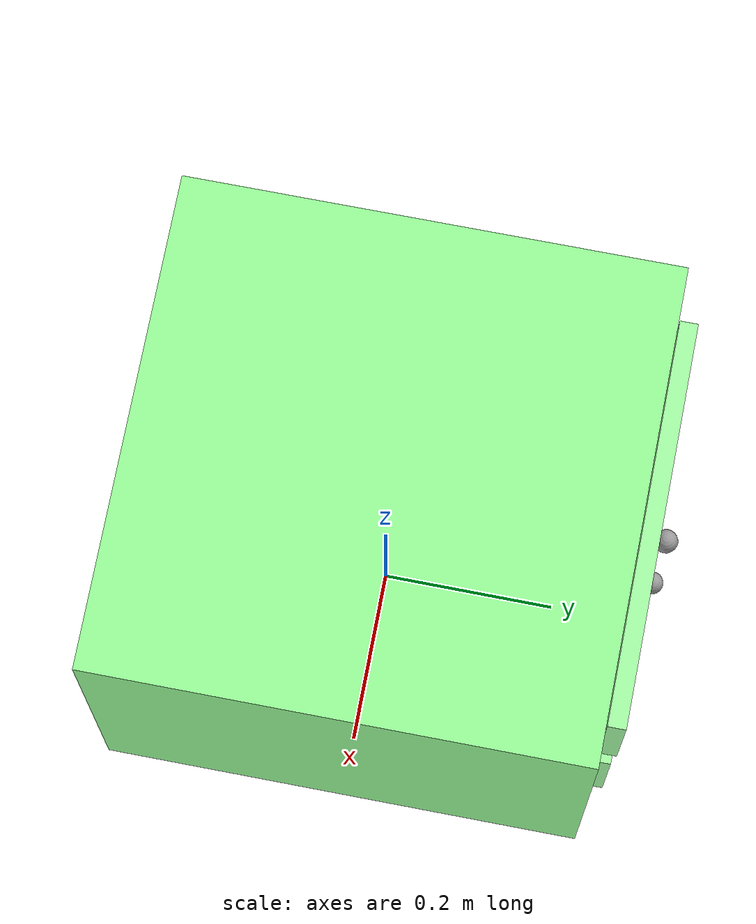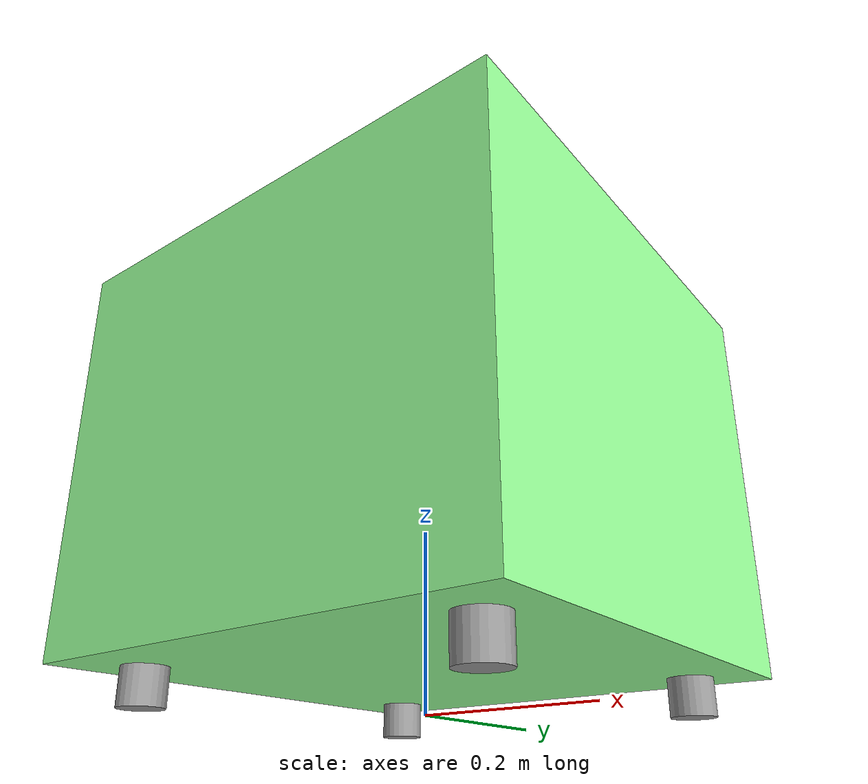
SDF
<?xml version='1.0'?>
<sdf version='1.7'>
  <model name='my_drawer'>
    <link name='link'>
      <inertial>
        <mass>1</mass>
        <inertia>
          <ixx>0.166667</ixx>
          <ixy>0</ixy>
          <ixz>0</ixz>
          <iyy>0.166667</iyy>
          <iyz>0</iyz>
          <izz>0.166667</izz>
        </inertia>
        <pose>0 0 0 0 -0 0</pose>
      </inertial>
      <self_collide>0</self_collide>
      <enable_wind>0</enable_wind>
      <kinematic>0</kinematic>
      <pose>0 0 0 0 -0 0</pose>
      <gravity>1</gravity>
      <visual name='visual'>
        <geometry>
          <box>
            <size>0.55 0.55 0.45</size>
          </box>
        </geometry>
        <material>
          <script>
            <name>Gazebo/Grey</name>
            <uri>file://media/materials/scripts/gazebo.material</uri>
          </script>
          <shader type='pixel'>
            <normal_map>__default__</normal_map>
          </shader>
          <ambient>0.6 1 0.6 1</ambient>
          <diffuse>0.6 1 0.6 1</diffuse>
          <specular>0.01 0.01 0.01 1</specular>
          <emissive>0 0 0 1</emissive>
        </material>
        <pose>0 0 0.27 0 -0 0</pose>
        <transparency>0</transparency>
        <cast_shadows>1</cast_shadows>
      </visual>
      <collision name='collision'>
        <laser_retro>0</laser_retro>
        <max_contacts>10</max_contacts>
        <pose>0 0 0.27 0 -0 0</pose>
        <geometry>
          <box>
            <size>0.55 0.55 0.45</size>
          </box>
        </geometry>
        <surface>
          <friction>
            <ode>
              <mu>1</mu>
              <mu2>1</mu2>
              <fdir1>0 0 0</fdir1>
              <slip1>0</slip1>
              <slip2>0</slip2>
            </ode>
            <torsional>
              <coefficient>1</coefficient>
              <patch_radius>0</patch_radius>
              <surface_radius>0</surface_radius>
              <use_patch_radius>1</use_patch_radius>
              <ode>
                <slip>0</slip>
              </ode>
            </torsional>
          </friction>
          <bounce>
            <restitution_coefficient>0</restitution_coefficient>
            <threshold>1e+06</threshold>
          </bounce>
          <contact>
            <collide_without_contact>0</collide_without_contact>
            <collide_without_contact_bitmask>1</collide_without_contact_bitmask>
            <collide_bitmask>1</collide_bitmask>
            <ode>
              <soft_cfm>0</soft_cfm>
              <soft_erp>0.2</soft_erp>
              <kp>1e+13</kp>
              <kd>1</kd>
              <max_vel>0.01</max_vel>
              <min_depth>0</min_depth>
            </ode>
            <bullet>
              <split_impulse>1</split_impulse>
              <split_impulse_penetration_threshold>-0.01</split_impulse_penetration_threshold>
              <soft_cfm>0</soft_cfm>
              <soft_erp>0.2</soft_erp>
              <kp>1e+13</kp>
              <kd>1</kd>
            </bullet>
          </contact>
        </surface>
      </collision>
    </link>
    <link name='link_0'>
      <inertial>
        <mass>1</mass>
        <inertia>
          <ixx>0.145833</ixx>
          <ixy>0</ixy>
          <ixz>0</ixz>
          <iyy>0.145833</iyy>
          <iyz>0</iyz>
          <izz>0.125</izz>
        </inertia>
        <pose>0 0 0 0 -0 0</pose>
      </inertial>
      <pose>0.2095 -0.203821 0.302524 0 -0 0</pose>
      <gravity>1</gravity>
      <self_collide>0</self_collide>
      <kinematic>0</kinematic>
      <enable_wind>0</enable_wind>
      <visual name='visual'>
        <pose>0 0 -0.275 0 -0 0</pose>
        <geometry>
          <cylinder>
            <radius>0.025</radius>
            <length>0.05</length>
          </cylinder>
        </geometry>
        <material>
          <lighting>1</lighting>
          <script>
            <uri>file://media/materials/scripts/gazebo.material</uri>
            <name>Gazebo/Grey</name>
          </script>
          <shader type='pixel'>
            <normal_map>__default__</normal_map>
          </shader>
          <ambient>0.7 0.7 0.7 1</ambient>
          <diffuse>0.7 0.7 0.7 1</diffuse>
          <specular>0.01 0.01 0.01 1</specular>
          <emissive>0 0 0 1</emissive>
        </material>
        <transparency>0</transparency>
        <cast_shadows>1</cast_shadows>
      </visual>
      <collision name='collision'>
        <laser_retro>0</laser_retro>
        <max_contacts>10</max_contacts>
        <pose>0 0 -0.275 0 -0 0</pose>
        <geometry>
          <cylinder>
            <radius>0.025</radius>
            <length>0.05</length>
          </cylinder>
        </geometry>
        <surface>
          <friction>
            <ode>
              <mu>1</mu>
              <mu2>1</mu2>
              <fdir1>0 0 0</fdir1>
              <slip1>0</slip1>
              <slip2>0</slip2>
            </ode>
            <torsional>
              <coefficient>1</coefficient>
              <patch_radius>0</patch_radius>
              <surface_radius>0</surface_radius>
              <use_patch_radius>1</use_patch_radius>
              <ode>
                <slip>0</slip>
              </ode>
            </torsional>
          </friction>
          <bounce>
            <restitution_coefficient>0</restitution_coefficient>
            <threshold>1e+06</threshold>
          </bounce>
          <contact>
            <collide_without_contact>0</collide_without_contact>
            <collide_without_contact_bitmask>1</collide_without_contact_bitmask>
            <collide_bitmask>1</collide_bitmask>
            <ode>
              <soft_cfm>0</soft_cfm>
              <soft_erp>0.2</soft_erp>
              <kp>1e+13</kp>
              <kd>1</kd>
              <max_vel>0.01</max_vel>
              <min_depth>0</min_depth>
            </ode>
            <bullet>
              <split_impulse>1</split_impulse>
              <split_impulse_penetration_threshold>-0.01</split_impulse_penetration_threshold>
              <soft_cfm>0</soft_cfm>
              <soft_erp>0.2</soft_erp>
              <kp>1e+13</kp>
              <kd>1</kd>
            </bullet>
          </contact>
        </surface>
      </collision>
    </link>
    <link name='link_0_0_clone'>
      <inertial>
        <mass>1</mass>
        <inertia>
          <ixx>0.166667</ixx>
          <ixy>0</ixy>
          <ixz>0</ixz>
          <iyy>0.166667</iyy>
          <iyz>0</iyz>
          <izz>0.166667</izz>
        </inertia>
        <pose>0 0 0 0 -0 0</pose>
      </inertial>
      <pose>-0.003378 0.283932 0.180993 0 -0 0</pose>
      <gravity>1</gravity>
      <self_collide>0</self_collide>
      <kinematic>0</kinematic>
      <enable_wind>0</enable_wind>
      <visual name='visual'>
        <pose>0 0 0 0 -0 0</pose>
        <geometry>
          <box>
            <size>0.45 0.02 0.15</size>
          </box>
        </geometry>
        <material>
          <lighting>1</lighting>
          <script>
            <uri>file://media/materials/scripts/gazebo.material</uri>
            <name>Gazebo/Grey</name>
          </script>
          <shader type='pixel'>
            <normal_map>__default__</normal_map>
          </shader>
          <ambient>0.65 1 0.65 1</ambient>
          <diffuse>0.65 1 0.65 1</diffuse>
          <specular>0.01 0.01 0.01 1</specular>
          <emissive>0 0 0 1</emissive>
        </material>
        <transparency>0</transparency>
        <cast_shadows>1</cast_shadows>
      </visual>
      <collision name='collision'>
        <laser_retro>0</laser_retro>
        <max_contacts>10</max_contacts>
        <pose>0 0 0 0 -0 0</pose>
        <geometry>
          <box>
            <size>0.45 0.02 0.15</size>
          </box>
        </geometry>
        <surface>
          <friction>
            <ode>
              <mu>1</mu>
              <mu2>1</mu2>
              <fdir1>0 0 0</fdir1>
              <slip1>0</slip1>
              <slip2>0</slip2>
            </ode>
            <torsional>
              <coefficient>1</coefficient>
              <patch_radius>0</patch_radius>
              <surface_radius>0</surface_radius>
              <use_patch_radius>1</use_patch_radius>
              <ode>
                <slip>0</slip>
              </ode>
            </torsional>
          </friction>
          <bounce>
            <restitution_coefficient>0</restitution_coefficient>
            <threshold>1e+06</threshold>
          </bounce>
          <contact>
            <collide_without_contact>0</collide_without_contact>
            <collide_without_contact_bitmask>1</collide_without_contact_bitmask>
            <collide_bitmask>1</collide_bitmask>
            <ode>
              <soft_cfm>0</soft_cfm>
              <soft_erp>0.2</soft_erp>
              <kp>1e+13</kp>
              <kd>1</kd>
              <max_vel>0.01</max_vel>
              <min_depth>0</min_depth>
            </ode>
            <bullet>
              <split_impulse>1</split_impulse>
              <split_impulse_penetration_threshold>-0.01</split_impulse_penetration_threshold>
              <soft_cfm>0</soft_cfm>
              <soft_erp>0.2</soft_erp>
              <kp>1e+13</kp>
              <kd>1</kd>
            </bullet>
          </contact>
        </surface>
      </collision>
    </link>
    <link name='link_0_0_clone_clone'>
      <inertial>
        <mass>1</mass>
        <inertia>
          <ixx>0.166667</ixx>
          <ixy>0</ixy>
          <ixz>0</ixz>
          <iyy>0.166667</iyy>
          <iyz>0</iyz>
          <izz>0.166667</izz>
        </inertia>
        <pose>0 0 0 0 -0 0</pose>
      </inertial>
      <pose>-0.004239 0.28732 0.377607 0 -0 0</pose>
      <gravity>1</gravity>
      <self_collide>0</self_collide>
      <kinematic>0</kinematic>
      <enable_wind>0</enable_wind>
      <visual name='visual'>
        <pose>0 0 0 0 -0 0</pose>
        <geometry>
          <box>
            <size>0.45 0.02 0.15</size>
          </box>
        </geometry>
        <material>
          <lighting>1</lighting>
          <script>
            <uri>file://media/materials/scripts/gazebo.material</uri>
            <name>Gazebo/Grey</name>
          </script>
          <shader type='pixel'>
            <normal_map>__default__</normal_map>
          </shader>
          <ambient>0.65 1 0.65 1</ambient>
          <diffuse>0.65 1 0.65 1</diffuse>
          <specular>0.01 0.01 0.01 1</specular>
          <emissive>0 0 0 1</emissive>
        </material>
        <transparency>0</transparency>
        <cast_shadows>1</cast_shadows>
      </visual>
      <collision name='collision'>
        <laser_retro>0</laser_retro>
        <max_contacts>10</max_contacts>
        <pose>0 0 0 0 -0 0</pose>
        <geometry>
          <box>
            <size>0.45 0.02 0.15</size>
          </box>
        </geometry>
        <surface>
          <friction>
            <ode>
              <mu>1</mu>
              <mu2>1</mu2>
              <fdir1>0 0 0</fdir1>
              <slip1>0</slip1>
              <slip2>0</slip2>
            </ode>
            <torsional>
              <coefficient>1</coefficient>
              <patch_radius>0</patch_radius>
              <surface_radius>0</surface_radius>
              <use_patch_radius>1</use_patch_radius>
              <ode>
                <slip>0</slip>
              </ode>
            </torsional>
          </friction>
          <bounce>
            <restitution_coefficient>0</restitution_coefficient>
            <threshold>1e+06</threshold>
          </bounce>
          <contact>
            <collide_without_contact>0</collide_without_contact>
            <collide_without_contact_bitmask>1</collide_without_contact_bitmask>
            <collide_bitmask>1</collide_bitmask>
            <ode>
              <soft_cfm>0</soft_cfm>
              <soft_erp>0.2</soft_erp>
              <kp>1e+13</kp>
              <kd>1</kd>
              <max_vel>0.01</max_vel>
              <min_depth>0</min_depth>
            </ode>
            <bullet>
              <split_impulse>1</split_impulse>
              <split_impulse_penetration_threshold>-0.01</split_impulse_penetration_threshold>
              <soft_cfm>0</soft_cfm>
              <soft_erp>0.2</soft_erp>
              <kp>1e+13</kp>
              <kd>1</kd>
            </bullet>
          </contact>
        </surface>
      </collision>
    </link>
    <link name='link_0_clone'>
      <inertial>
        <mass>1</mass>
        <inertia>
          <ixx>0.145833</ixx>
          <ixy>0</ixy>
          <ixz>0</ixz>
          <iyy>0.145833</iyy>
          <iyz>0</iyz>
          <izz>0.125</izz>
        </inertia>
        <pose>0 0 0 0 -0 0</pose>
      </inertial>
      <pose>-0.20661 -0.201979 0.303229 0 -0 0</pose>
      <gravity>1</gravity>
      <self_collide>0</self_collide>
      <kinematic>0</kinematic>
      <enable_wind>0</enable_wind>
      <visual name='visual'>
        <pose>0 0 -0.275 0 -0 0</pose>
        <geometry>
          <cylinder>
            <radius>0.025</radius>
            <length>0.05</length>
          </cylinder>
        </geometry>
        <material>
          <lighting>1</lighting>
          <script>
            <uri>file://media/materials/scripts/gazebo.material</uri>
            <name>Gazebo/Grey</name>
          </script>
          <shader type='pixel'>
            <normal_map>__default__</normal_map>
          </shader>
          <ambient>0.8 0.8 0.8 1</ambient>
          <diffuse>0.8 0.8 0.8 1</diffuse>
          <specular>0.01 0.01 0.01 1</specular>
          <emissive>0 0 0 1</emissive>
        </material>
        <transparency>0</transparency>
        <cast_shadows>1</cast_shadows>
      </visual>
      <collision name='collision'>
        <laser_retro>0</laser_retro>
        <max_contacts>10</max_contacts>
        <pose>0 0 -0.275 0 -0 0</pose>
        <geometry>
          <cylinder>
            <radius>0.025</radius>
            <length>0.05</length>
          </cylinder>
        </geometry>
        <surface>
          <friction>
            <ode>
              <mu>1</mu>
              <mu2>1</mu2>
              <fdir1>0 0 0</fdir1>
              <slip1>0</slip1>
              <slip2>0</slip2>
            </ode>
            <torsional>
              <coefficient>1</coefficient>
              <patch_radius>0</patch_radius>
              <surface_radius>0</surface_radius>
              <use_patch_radius>1</use_patch_radius>
              <ode>
                <slip>0</slip>
              </ode>
            </torsional>
          </friction>
          <bounce>
            <restitution_coefficient>0</restitution_coefficient>
            <threshold>1e+06</threshold>
          </bounce>
          <contact>
            <collide_without_contact>0</collide_without_contact>
            <collide_without_contact_bitmask>1</collide_without_contact_bitmask>
            <collide_bitmask>1</collide_bitmask>
            <ode>
              <soft_cfm>0</soft_cfm>
              <soft_erp>0.2</soft_erp>
              <kp>1e+13</kp>
              <kd>1</kd>
              <max_vel>0.01</max_vel>
              <min_depth>0</min_depth>
            </ode>
            <bullet>
              <split_impulse>1</split_impulse>
              <split_impulse_penetration_threshold>-0.01</split_impulse_penetration_threshold>
              <soft_cfm>0</soft_cfm>
              <soft_erp>0.2</soft_erp>
              <kp>1e+13</kp>
              <kd>1</kd>
            </bullet>
          </contact>
        </surface>
      </collision>
    </link>
    <link name='link_0_clone_0'>
      <inertial>
        <mass>1</mass>
        <inertia>
          <ixx>0.145833</ixx>
          <ixy>0</ixy>
          <ixz>0</ixz>
          <iyy>0.145833</iyy>
          <iyz>0</iyz>
          <izz>0.125</izz>
        </inertia>
        <pose>0 0 0 0 -0 0</pose>
      </inertial>
      <pose>0.205481 0.211972 0.302524 0 -0 0</pose>
      <gravity>1</gravity>
      <self_collide>0</self_collide>
      <kinematic>0</kinematic>
      <enable_wind>0</enable_wind>
      <visual name='visual'>
        <pose>0 0 -0.275 0 -0 0</pose>
        <geometry>
          <cylinder>
            <radius>0.025</radius>
            <length>0.05</length>
          </cylinder>
        </geometry>
        <material>
          <lighting>1</lighting>
          <script>
            <uri>file://media/materials/scripts/gazebo.material</uri>
            <name>Gazebo/Grey</name>
          </script>
          <shader type='pixel'>
            <normal_map>__default__</normal_map>
          </shader>
          <ambient>0.7 0.7 0.7 1</ambient>
          <diffuse>0.7 0.7 0.7 1</diffuse>
          <specular>0.01 0.01 0.01 1</specular>
          <emissive>0 0 0 1</emissive>
        </material>
        <transparency>0</transparency>
        <cast_shadows>1</cast_shadows>
      </visual>
      <collision name='collision'>
        <laser_retro>0</laser_retro>
        <max_contacts>10</max_contacts>
        <pose>0 0 -0.275 0 -0 0</pose>
        <geometry>
          <cylinder>
            <radius>0.025</radius>
            <length>0.05</length>
          </cylinder>
        </geometry>
        <surface>
          <friction>
            <ode>
              <mu>1</mu>
              <mu2>1</mu2>
              <fdir1>0 0 0</fdir1>
              <slip1>0</slip1>
              <slip2>0</slip2>
            </ode>
            <torsional>
              <coefficient>1</coefficient>
              <patch_radius>0</patch_radius>
              <surface_radius>0</surface_radius>
              <use_patch_radius>1</use_patch_radius>
              <ode>
                <slip>0</slip>
              </ode>
            </torsional>
          </friction>
          <bounce>
            <restitution_coefficient>0</restitution_coefficient>
            <threshold>1e+06</threshold>
          </bounce>
          <contact>
            <collide_without_contact>0</collide_without_contact>
            <collide_without_contact_bitmask>1</collide_without_contact_bitmask>
            <collide_bitmask>1</collide_bitmask>
            <ode>
              <soft_cfm>0</soft_cfm>
              <soft_erp>0.2</soft_erp>
              <kp>1e+13</kp>
              <kd>1</kd>
              <max_vel>0.01</max_vel>
              <min_depth>0</min_depth>
            </ode>
            <bullet>
              <split_impulse>1</split_impulse>
              <split_impulse_penetration_threshold>-0.01</split_impulse_penetration_threshold>
              <soft_cfm>0</soft_cfm>
              <soft_erp>0.2</soft_erp>
              <kp>1e+13</kp>
              <kd>1</kd>
            </bullet>
          </contact>
        </surface>
      </collision>
    </link>
    <link name='link_0_clone_0_clone'>
      <inertial>
        <mass>1</mass>
        <inertia>
          <ixx>0.145833</ixx>
          <ixy>0</ixy>
          <ixz>0</ixz>
          <iyy>0.145833</iyy>
          <iyz>0</iyz>
          <izz>0.125</izz>
        </inertia>
        <pose>0 0 0 0 -0 0</pose>
      </inertial>
      <pose>-0.197514 0.204937 0.302524 0 -0 0</pose>
      <gravity>1</gravity>
      <self_collide>0</self_collide>
      <kinematic>0</kinematic>
      <enable_wind>0</enable_wind>
      <visual name='visual'>
        <pose>0 0 -0.275 0 -0 0</pose>
        <geometry>
          <cylinder>
            <radius>0.025</radius>
            <length>0.05</length>
          </cylinder>
        </geometry>
        <material>
          <lighting>1</lighting>
          <script>
            <uri>file://media/materials/scripts/gazebo.material</uri>
            <name>Gazebo/Grey</name>
          </script>
          <shader type='pixel'>
            <normal_map>__default__</normal_map>
          </shader>
          <ambient>0.7 0.7 0.7 1</ambient>
          <diffuse>0.7 0.7 0.7 1</diffuse>
          <specular>0.01 0.01 0.01 1</specular>
          <emissive>0 0 0 1</emissive>
        </material>
        <transparency>0</transparency>
        <cast_shadows>1</cast_shadows>
      </visual>
      <collision name='collision'>
        <laser_retro>0</laser_retro>
        <max_contacts>10</max_contacts>
        <pose>0 0 -0.275 0 -0 0</pose>
        <geometry>
          <cylinder>
            <radius>0.025</radius>
            <length>0.05</length>
          </cylinder>
        </geometry>
        <surface>
          <friction>
            <ode>
              <mu>1</mu>
              <mu2>1</mu2>
              <fdir1>0 0 0</fdir1>
              <slip1>0</slip1>
              <slip2>0</slip2>
            </ode>
            <torsional>
              <coefficient>1</coefficient>
              <patch_radius>0</patch_radius>
              <surface_radius>0</surface_radius>
              <use_patch_radius>1</use_patch_radius>
              <ode>
                <slip>0</slip>
              </ode>
            </torsional>
          </friction>
          <bounce>
            <restitution_coefficient>0</restitution_coefficient>
            <threshold>1e+06</threshold>
          </bounce>
          <contact>
            <collide_without_contact>0</collide_without_contact>
            <collide_without_contact_bitmask>1</collide_without_contact_bitmask>
            <collide_bitmask>1</collide_bitmask>
            <ode>
              <soft_cfm>0</soft_cfm>
              <soft_erp>0.2</soft_erp>
              <kp>1e+13</kp>
              <kd>1</kd>
              <max_vel>0.01</max_vel>
              <min_depth>0</min_depth>
            </ode>
            <bullet>
              <split_impulse>1</split_impulse>
              <split_impulse_penetration_threshold>-0.01</split_impulse_penetration_threshold>
              <soft_cfm>0</soft_cfm>
              <soft_erp>0.2</soft_erp>
              <kp>1e+13</kp>
              <kd>1</kd>
            </bullet>
          </contact>
        </surface>
      </collision>
    </link>
    <link name='link_1'>
      <inertial>
        <mass>1</mass>
        <inertia>
          <ixx>0.1</ixx>
          <ixy>0</ixy>
          <ixz>0</ixz>
          <iyy>0.1</iyy>
          <iyz>0</iyz>
          <izz>0.1</izz>
        </inertia>
        <pose>0 0 0 0 -0 0</pose>
      </inertial>
      <pose>-0.007427 0.306598 0.372378 0 -0 0</pose>
      <gravity>1</gravity>
      <self_collide>0</self_collide>
      <kinematic>0</kinematic>
      <enable_wind>0</enable_wind>
      <visual name='visual'>
        <pose>0 0 0 0 -0 0</pose>
        <geometry>
          <sphere>
            <radius>0.013</radius>
          </sphere>
        </geometry>
        <material>
          <lighting>1</lighting>
          <script>
            <uri>file://media/materials/scripts/gazebo.material</uri>
            <name>Gazebo/Grey</name>
          </script>
          <shader type='pixel'>
            <normal_map>__default__</normal_map>
          </shader>
          <ambient>0.9 0.9 0.9 1</ambient>
          <diffuse>0.9 0.9 0.9 1</diffuse>
          <specular>0.01 0.01 0.01 1</specular>
          <emissive>0 0 0 1</emissive>
        </material>
        <transparency>0</transparency>
        <cast_shadows>1</cast_shadows>
      </visual>
      <collision name='collision'>
        <laser_retro>0</laser_retro>
        <max_contacts>10</max_contacts>
        <pose>0 0 0 0 -0 0</pose>
        <geometry>
          <sphere>
            <radius>0.013</radius>
          </sphere>
        </geometry>
        <surface>
          <friction>
            <ode>
              <mu>1</mu>
              <mu2>1</mu2>
              <fdir1>0 0 0</fdir1>
              <slip1>0</slip1>
              <slip2>0</slip2>
            </ode>
            <torsional>
              <coefficient>1</coefficient>
              <patch_radius>0</patch_radius>
              <surface_radius>0</surface_radius>
              <use_patch_radius>1</use_patch_radius>
              <ode>
                <slip>0</slip>
              </ode>
            </torsional>
          </friction>
          <bounce>
            <restitution_coefficient>0</restitution_coefficient>
            <threshold>1e+06</threshold>
          </bounce>
          <contact>
            <collide_without_contact>0</collide_without_contact>
            <collide_without_contact_bitmask>1</collide_without_contact_bitmask>
            <collide_bitmask>1</collide_bitmask>
            <ode>
              <soft_cfm>0</soft_cfm>
              <soft_erp>0.2</soft_erp>
              <kp>1e+13</kp>
              <kd>1</kd>
              <max_vel>0.01</max_vel>
              <min_depth>0</min_depth>
            </ode>
            <bullet>
              <split_impulse>1</split_impulse>
              <split_impulse_penetration_threshold>-0.01</split_impulse_penetration_threshold>
              <soft_cfm>0</soft_cfm>
              <soft_erp>0.2</soft_erp>
              <kp>1e+13</kp>
              <kd>1</kd>
            </bullet>
          </contact>
        </surface>
      </collision>
    </link>
    <link name='link_1_clone'>
      <inertial>
        <mass>1</mass>
        <inertia>
          <ixx>0.1</ixx>
          <ixy>0</ixy>
          <ixz>0</ixz>
          <iyy>0.1</iyy>
          <iyz>0</iyz>
          <izz>0.1</izz>
        </inertia>
        <pose>0 0 0 0 -0 0</pose>
      </inertial>
      <pose>-0.007411 0.306159 0.179254 0 -0 0</pose>
      <gravity>1</gravity>
      <self_collide>0</self_collide>
      <kinematic>0</kinematic>
      <enable_wind>0</enable_wind>
      <visual name='visual'>
        <pose>0 0 0 0 -0 0</pose>
        <geometry>
          <sphere>
            <radius>0.013</radius>
          </sphere>
        </geometry>
        <material>
          <lighting>1</lighting>
          <script>
            <uri>file://media/materials/scripts/gazebo.material</uri>
            <name>Gazebo/Grey</name>
          </script>
          <shader type='pixel'>
            <normal_map>__default__</normal_map>
          </shader>
          <ambient>0.9 0.9 0.9 1</ambient>
          <diffuse>0.9 0.9 0.9 1</diffuse>
          <specular>0.01 0.01 0.01 1</specular>
          <emissive>0 0 0 1</emissive>
        </material>
        <transparency>0</transparency>
        <cast_shadows>1</cast_shadows>
      </visual>
      <collision name='collision'>
        <laser_retro>0</laser_retro>
        <max_contacts>10</max_contacts>
        <pose>0 0 0 0 -0 0</pose>
        <geometry>
          <sphere>
            <radius>0.013</radius>
          </sphere>
        </geometry>
        <surface>
          <friction>
            <ode>
              <mu>1</mu>
              <mu2>1</mu2>
              <fdir1>0 0 0</fdir1>
              <slip1>0</slip1>
              <slip2>0</slip2>
            </ode>
            <torsional>
              <coefficient>1</coefficient>
              <patch_radius>0</patch_radius>
              <surface_radius>0</surface_radius>
              <use_patch_radius>1</use_patch_radius>
              <ode>
                <slip>0</slip>
              </ode>
            </torsional>
          </friction>
          <bounce>
            <restitution_coefficient>0</restitution_coefficient>
            <threshold>1e+06</threshold>
          </bounce>
          <contact>
            <collide_without_contact>0</collide_without_contact>
            <collide_without_contact_bitmask>1</collide_without_contact_bitmask>
            <collide_bitmask>1</collide_bitmask>
            <ode>
              <soft_cfm>0</soft_cfm>
              <soft_erp>0.2</soft_erp>
              <kp>1e+13</kp>
              <kd>1</kd>
              <max_vel>0.01</max_vel>
              <min_depth>0</min_depth>
            </ode>
            <bullet>
              <split_impulse>1</split_impulse>
              <split_impulse_penetration_threshold>-0.01</split_impulse_penetration_threshold>
              <soft_cfm>0</soft_cfm>
              <soft_erp>0.2</soft_erp>
              <kp>1e+13</kp>
              <kd>1</kd>
            </bullet>
          </contact>
        </surface>
      </collision>
    </link>
    <static>1</static>
    <allow_auto_disable>1</allow_auto_disable>
  </model>
</sdf>
